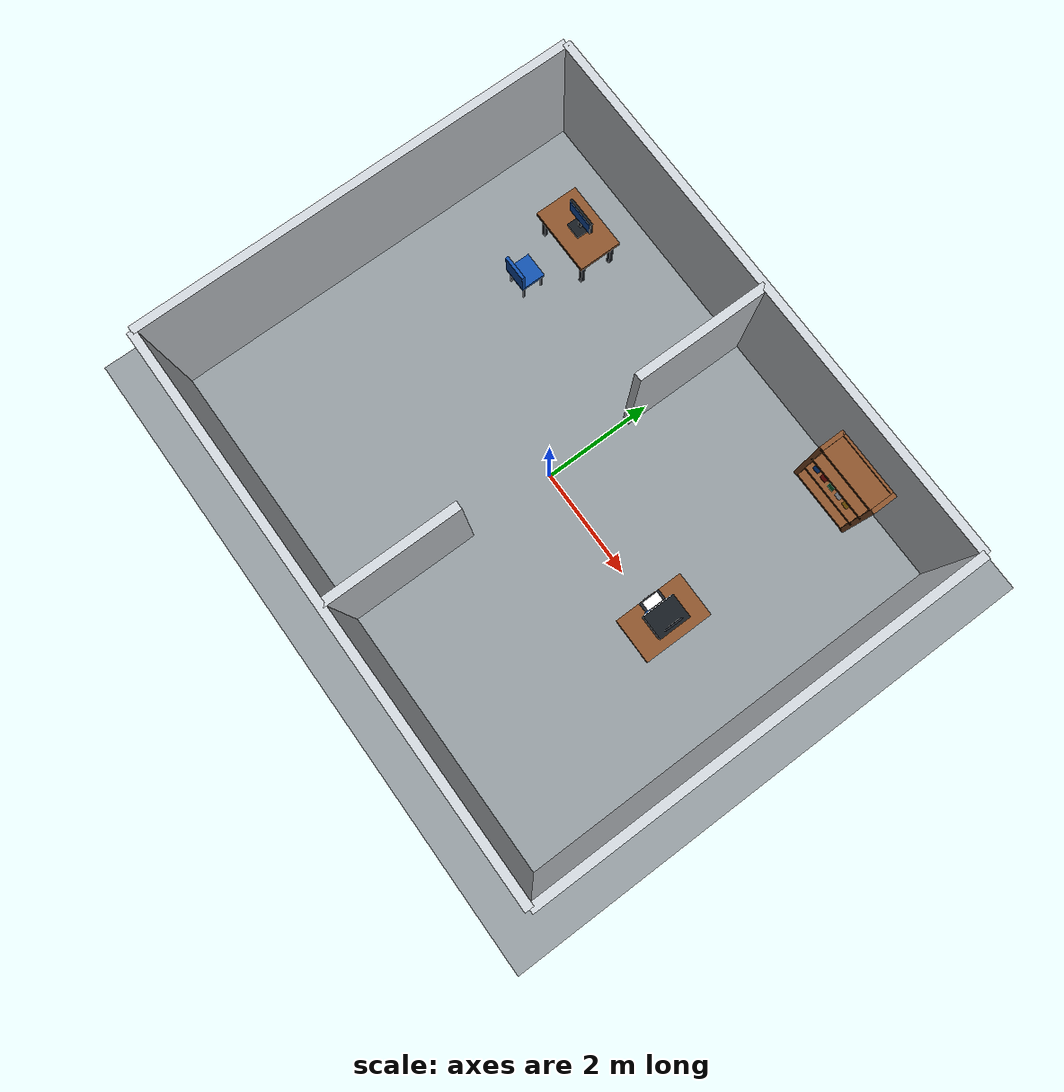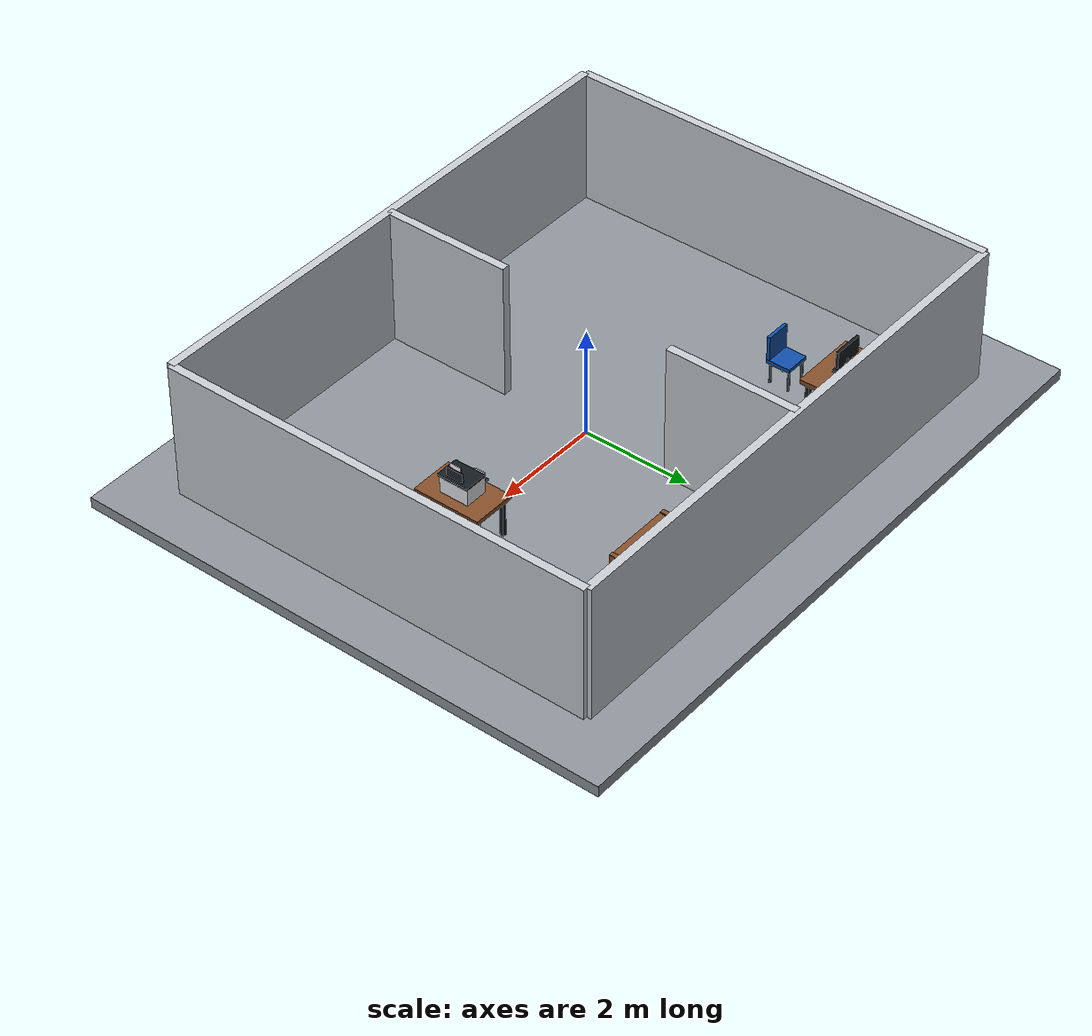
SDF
<?xml version="1.0"?>
<!-- All geometry is bundled and authored for this project; no Fuel downloads. -->
<sdf version="1.9">
  <world name="office">
    <physics name="default" type="ignored"><max_step_size>0.002</max_step_size><real_time_factor>1.0</real_time_factor></physics>
    <gravity>0 0 -9.81</gravity>
    <plugin filename="gz-sim-physics-system" name="gz::sim::systems::Physics"/>
    <plugin filename="gz-sim-user-commands-system" name="gz::sim::systems::UserCommands"/>
    <plugin filename="gz-sim-scene-broadcaster-system" name="gz::sim::systems::SceneBroadcaster"/>
    <plugin filename="gz-sim-sensors-system" name="gz::sim::systems::Sensors"><render_engine>ogre2</render_engine></plugin>
    <scene><ambient>0.65 0.65 0.65 1</ambient><background>0.85 0.9 0.95 1</background><shadows>false</shadows></scene>
    <light name="sun" type="directional"><pose>0 0 6 0 0 0</pose><diffuse>0.85 0.85 0.85 1</diffuse><specular>0.1 0.1 0.1 1</specular><direction>-0.3 -0.4 -1</direction><cast_shadows>false</cast_shadows></light>
    <!-- Observer view for recordings; never used by localization or visual memory. -->
    <model name="demo_camera"><static>true</static><pose>0.6 -4 5 0 0 0</pose><link name="camera">
      <sensor name="overview" type="camera">
        <pose>0 0 0 0 0.8960553846 1.5707963268</pose>
        <topic>/demo/overview</topic><always_on>true</always_on><update_rate>5</update_rate>
        <camera><horizontal_fov>1.25</horizontal_fov>
          <image><width>640</width><height>480</height><format>R8G8B8</format></image>
          <clip><near>0.1</near><far>30</far></clip>
        </camera>
      </sensor>
    </link></model>
    <model name="floor"><static>true</static><pose>0 0 -0.1 0 0 0</pose><link name="body">
      <visual name="floor"><pose>0 0 0 0 0 0</pose><geometry><box><size>12 10 0.2</size></box></geometry><material><ambient>0.55 0.58 0.6 1</ambient><diffuse>0.55 0.58 0.6 1</diffuse></material></visual>
      <collision name="floor"><pose>0 0 0 0 0 0</pose><geometry><box><size>12 10 0.2</size></box></geometry></collision>
    </link></model>
    <model name="walls"><static>true</static><pose>0 0 0 0 0 0</pose><link name="body">
      <visual name="north"><pose>0 4 1.25 0 0 0</pose><geometry><box><size>10 0.15 2.5</size></box></geometry><material><ambient>0.78 0.8 0.82 1</ambient><diffuse>0.78 0.8 0.82 1</diffuse></material></visual>
      <collision name="north"><pose>0 4 1.25 0 0 0</pose><geometry><box><size>10 0.15 2.5</size></box></geometry></collision>
      <visual name="south"><pose>0 -4 1.25 0 0 0</pose><geometry><box><size>10 0.15 2.5</size></box></geometry><material><ambient>0.78 0.8 0.82 1</ambient><diffuse>0.78 0.8 0.82 1</diffuse></material></visual>
      <collision name="south"><pose>0 -4 1.25 0 0 0</pose><geometry><box><size>10 0.15 2.5</size></box></geometry></collision>
      <visual name="east"><pose>5 0 1.25 0 0 0</pose><geometry><box><size>0.15 8 2.5</size></box></geometry><material><ambient>0.78 0.8 0.82 1</ambient><diffuse>0.78 0.8 0.82 1</diffuse></material></visual>
      <collision name="east"><pose>5 0 1.25 0 0 0</pose><geometry><box><size>0.15 8 2.5</size></box></geometry></collision>
      <visual name="west"><pose>-5 0 1.25 0 0 0</pose><geometry><box><size>0.15 8 2.5</size></box></geometry><material><ambient>0.78 0.8 0.82 1</ambient><diffuse>0.78 0.8 0.82 1</diffuse></material></visual>
      <collision name="west"><pose>-5 0 1.25 0 0 0</pose><geometry><box><size>0.15 8 2.5</size></box></geometry></collision>
      <visual name="divider_north"><pose>0 2.8 1.25 0 0 0</pose><geometry><box><size>0.15 2.4 2.5</size></box></geometry><material><ambient>0.78 0.8 0.82 1</ambient><diffuse>0.78 0.8 0.82 1</diffuse></material></visual>
      <collision name="divider_north"><pose>0 2.8 1.25 0 0 0</pose><geometry><box><size>0.15 2.4 2.5</size></box></geometry></collision>
      <visual name="divider_south"><pose>0 -2.8 1.25 0 0 0</pose><geometry><box><size>0.15 2.4 2.5</size></box></geometry><material><ambient>0.78 0.8 0.82 1</ambient><diffuse>0.78 0.8 0.82 1</diffuse></material></visual>
      <collision name="divider_south"><pose>0 -2.8 1.25 0 0 0</pose><geometry><box><size>0.15 2.4 2.5</size></box></geometry></collision>
    </link></model>
    <model name="printer_desk"><static>true</static><pose>3 0 0 0 0 1.5707963268</pose><link name="body">
      <visual name="top"><pose>0 0 0.74 0 0 0</pose><geometry><box><size>1.25 0.8 0.08</size></box></geometry><material><ambient>0.52 0.31 0.16 1</ambient><diffuse>0.52 0.31 0.16 1</diffuse></material></visual>
      <collision name="top"><pose>0 0 0.74 0 0 0</pose><geometry><box><size>1.25 0.8 0.08</size></box></geometry></collision>
      <visual name="leg_-0.53_-0.3"><pose>-0.53 -0.3 0.35 0 0 0</pose><geometry><box><size>0.07 0.07 0.7</size></box></geometry><material><ambient>0.08 0.1 0.12 1</ambient><diffuse>0.08 0.1 0.12 1</diffuse></material></visual>
      <collision name="leg_-0.53_-0.3"><pose>-0.53 -0.3 0.35 0 0 0</pose><geometry><box><size>0.07 0.07 0.7</size></box></geometry></collision>
      <visual name="leg_-0.53_0.3"><pose>-0.53 0.3 0.35 0 0 0</pose><geometry><box><size>0.07 0.07 0.7</size></box></geometry><material><ambient>0.08 0.1 0.12 1</ambient><diffuse>0.08 0.1 0.12 1</diffuse></material></visual>
      <collision name="leg_-0.53_0.3"><pose>-0.53 0.3 0.35 0 0 0</pose><geometry><box><size>0.07 0.07 0.7</size></box></geometry></collision>
      <visual name="leg_0.53_-0.3"><pose>0.53 -0.3 0.35 0 0 0</pose><geometry><box><size>0.07 0.07 0.7</size></box></geometry><material><ambient>0.08 0.1 0.12 1</ambient><diffuse>0.08 0.1 0.12 1</diffuse></material></visual>
      <collision name="leg_0.53_-0.3"><pose>0.53 -0.3 0.35 0 0 0</pose><geometry><box><size>0.07 0.07 0.7</size></box></geometry></collision>
      <visual name="leg_0.53_0.3"><pose>0.53 0.3 0.35 0 0 0</pose><geometry><box><size>0.07 0.07 0.7</size></box></geometry><material><ambient>0.08 0.1 0.12 1</ambient><diffuse>0.08 0.1 0.12 1</diffuse></material></visual>
      <collision name="leg_0.53_0.3"><pose>0.53 0.3 0.35 0 0 0</pose><geometry><box><size>0.07 0.07 0.7</size></box></geometry></collision>
    </link></model>
    <model name="printer"><static>true</static><pose>3 0 0.78 0 0 -1.5707963268</pose><link name="body">
      <visual name="body"><pose>0 0 0.16 0 0 0</pose><geometry><box><size>0.55 0.42 0.32</size></box></geometry><material><ambient>0.9 0.91 0.93 1</ambient><diffuse>0.9 0.91 0.93 1</diffuse></material></visual>
      <collision name="body"><pose>0 0 0.16 0 0 0</pose><geometry><box><size>0.55 0.42 0.32</size></box></geometry></collision>
      <visual name="scanner_lid"><pose>0 0.02 0.34 0 0 0</pose><geometry><box><size>0.58 0.43 0.04</size></box></geometry><material><ambient>0.08 0.1 0.12 1</ambient><diffuse>0.08 0.1 0.12 1</diffuse></material></visual>
      <collision name="scanner_lid"><pose>0 0.02 0.34 0 0 0</pose><geometry><box><size>0.58 0.43 0.04</size></box></geometry></collision>
      <visual name="paper_slot"><pose>0 -0.216 0.16 0 0 0</pose><geometry><box><size>0.38 0.012 0.045</size></box></geometry><material><ambient>0.08 0.1 0.12 1</ambient><diffuse>0.08 0.1 0.12 1</diffuse></material></visual>
      <collision name="paper_slot"><pose>0 -0.216 0.16 0 0 0</pose><geometry><box><size>0.38 0.012 0.045</size></box></geometry></collision>
      <visual name="paper_tray"><pose>0 -0.3 0.08 0 0 0</pose><geometry><box><size>0.38 0.19 0.025</size></box></geometry><material><ambient>0.12 0.14 0.17 1</ambient><diffuse>0.12 0.14 0.17 1</diffuse></material></visual>
      <collision name="paper_tray"><pose>0 -0.3 0.08 0 0 0</pose><geometry><box><size>0.38 0.19 0.025</size></box></geometry></collision>
      <visual name="paper"><pose>0 -0.29 0.098 0 0 0</pose><geometry><box><size>0.29 0.18 0.01</size></box></geometry><material><ambient>1 1 1 1</ambient><diffuse>1 1 1 1</diffuse></material></visual>
      <collision name="paper"><pose>0 -0.29 0.098 0 0 0</pose><geometry><box><size>0.29 0.18 0.01</size></box></geometry></collision>
      <visual name="display"><pose>0.18 -0.22 0.255 0 0 0</pose><geometry><box><size>0.1 0.015 0.05</size></box></geometry><material><ambient>0.06 0.3 0.65 1</ambient><diffuse>0.06 0.3 0.65 1</diffuse></material></visual>
      <collision name="display"><pose>0.18 -0.22 0.255 0 0 0</pose><geometry><box><size>0.1 0.015 0.05</size></box></geometry></collision>
      <visual name="input_support"><pose>0 0.17 0.43 0 0 0</pose><geometry><box><size>0.32 0.025 0.22</size></box></geometry><material><ambient>0.12 0.14 0.17 1</ambient><diffuse>0.12 0.14 0.17 1</diffuse></material></visual>
      <collision name="input_support"><pose>0 0.17 0.43 0 0 0</pose><geometry><box><size>0.32 0.025 0.22</size></box></geometry></collision>
      <visual name="input_paper"><pose>0 0.15 0.48 0 0 0</pose><geometry><box><size>0.21 0.006 0.29</size></box></geometry><material><ambient>1 1 1 1</ambient><diffuse>1 1 1 1</diffuse></material></visual>
      <collision name="input_paper"><pose>0 0.15 0.48 0 0 0</pose><geometry><box><size>0.21 0.006 0.29</size></box></geometry></collision>
      <visual name="output_page"><pose>0 -0.402 0.09 0 0 0</pose><geometry><box><size>0.21 0.008 0.15</size></box></geometry><material><ambient>1 1 1 1</ambient><diffuse>1 1 1 1</diffuse></material></visual>
      <collision name="output_page"><pose>0 -0.402 0.09 0 0 0</pose><geometry><box><size>0.21 0.008 0.15</size></box></geometry></collision>
      <visual name="page_line_one"><pose>0 -0.408 0.125 0 0 0</pose><geometry><box><size>0.14 0.002 0.006</size></box></geometry><material><ambient>0.2 0.2 0.2 1</ambient><diffuse>0.2 0.2 0.2 1</diffuse></material></visual>
      <visual name="page_line_two"><pose>-0.015 -0.408 0.10 0 0 0</pose><geometry><box><size>0.11 0.002 0.006</size></box></geometry><material><ambient>0.2 0.2 0.2 1</ambient><diffuse>0.2 0.2 0.2 1</diffuse></material></visual>
    </link></model>
    <model name="work_desk"><static>true</static><pose>-3 2.8 0 0 0 0</pose><link name="body">
      <visual name="top"><pose>0 0 0.74 0 0 0</pose><geometry><box><size>1.25 0.8 0.08</size></box></geometry><material><ambient>0.52 0.31 0.16 1</ambient><diffuse>0.52 0.31 0.16 1</diffuse></material></visual>
      <collision name="top"><pose>0 0 0.74 0 0 0</pose><geometry><box><size>1.25 0.8 0.08</size></box></geometry></collision>
      <visual name="leg_-0.53_-0.3"><pose>-0.53 -0.3 0.35 0 0 0</pose><geometry><box><size>0.07 0.07 0.7</size></box></geometry><material><ambient>0.08 0.1 0.12 1</ambient><diffuse>0.08 0.1 0.12 1</diffuse></material></visual>
      <collision name="leg_-0.53_-0.3"><pose>-0.53 -0.3 0.35 0 0 0</pose><geometry><box><size>0.07 0.07 0.7</size></box></geometry></collision>
      <visual name="leg_-0.53_0.3"><pose>-0.53 0.3 0.35 0 0 0</pose><geometry><box><size>0.07 0.07 0.7</size></box></geometry><material><ambient>0.08 0.1 0.12 1</ambient><diffuse>0.08 0.1 0.12 1</diffuse></material></visual>
      <collision name="leg_-0.53_0.3"><pose>-0.53 0.3 0.35 0 0 0</pose><geometry><box><size>0.07 0.07 0.7</size></box></geometry></collision>
      <visual name="leg_0.53_-0.3"><pose>0.53 -0.3 0.35 0 0 0</pose><geometry><box><size>0.07 0.07 0.7</size></box></geometry><material><ambient>0.08 0.1 0.12 1</ambient><diffuse>0.08 0.1 0.12 1</diffuse></material></visual>
      <collision name="leg_0.53_-0.3"><pose>0.53 -0.3 0.35 0 0 0</pose><geometry><box><size>0.07 0.07 0.7</size></box></geometry></collision>
      <visual name="leg_0.53_0.3"><pose>0.53 0.3 0.35 0 0 0</pose><geometry><box><size>0.07 0.07 0.7</size></box></geometry><material><ambient>0.08 0.1 0.12 1</ambient><diffuse>0.08 0.1 0.12 1</diffuse></material></visual>
      <collision name="leg_0.53_0.3"><pose>0.53 0.3 0.35 0 0 0</pose><geometry><box><size>0.07 0.07 0.7</size></box></geometry></collision>
    </link></model>
    <model name="monitor"><static>true</static><pose>-3 2.8 0.78 0 0 0</pose><link name="body">
      <visual name="foot"><pose>0 0 0.015 0 0 0</pose><geometry><box><size>0.3 0.24 0.03</size></box></geometry><material><ambient>0.08 0.1 0.12 1</ambient><diffuse>0.08 0.1 0.12 1</diffuse></material></visual>
      <collision name="foot"><pose>0 0 0.015 0 0 0</pose><geometry><box><size>0.3 0.24 0.03</size></box></geometry></collision>
      <visual name="stand"><pose>0 0.05 0.15 0 0 0</pose><geometry><box><size>0.06 0.05 0.27</size></box></geometry><material><ambient>0.08 0.1 0.12 1</ambient><diffuse>0.08 0.1 0.12 1</diffuse></material></visual>
      <collision name="stand"><pose>0 0.05 0.15 0 0 0</pose><geometry><box><size>0.06 0.05 0.27</size></box></geometry></collision>
      <visual name="screen"><pose>0 0.05 0.38 0 0 0</pose><geometry><box><size>0.56 0.05 0.32</size></box></geometry><material><ambient>0.08 0.1 0.12 1</ambient><diffuse>0.08 0.1 0.12 1</diffuse></material></visual>
      <collision name="screen"><pose>0 0.05 0.38 0 0 0</pose><geometry><box><size>0.56 0.05 0.32</size></box></geometry></collision>
      <visual name="display"><pose>0 0.018 0.38 0 0 0</pose><geometry><box><size>0.52 0.012 0.28</size></box></geometry><material><ambient>0.06 0.3 0.65 1</ambient><diffuse>0.06 0.3 0.65 1</diffuse></material></visual>
      <collision name="display"><pose>0 0.018 0.38 0 0 0</pose><geometry><box><size>0.52 0.012 0.28</size></box></geometry></collision>
    </link></model>
    <model name="chair"><static>true</static><pose>-3 1.7 0 0 0 3.1415926536</pose><link name="body">
      <visual name="seat"><pose>0 0 0.44 0 0 0</pose><geometry><box><size>0.46 0.45 0.07</size></box></geometry><material><ambient>0.06 0.3 0.65 1</ambient><diffuse>0.06 0.3 0.65 1</diffuse></material></visual>
      <collision name="seat"><pose>0 0 0.44 0 0 0</pose><geometry><box><size>0.46 0.45 0.07</size></box></geometry></collision>
      <visual name="back"><pose>0 0.2 0.69 0 0 0</pose><geometry><box><size>0.46 0.06 0.48</size></box></geometry><material><ambient>0.06 0.3 0.65 1</ambient><diffuse>0.06 0.3 0.65 1</diffuse></material></visual>
      <collision name="back"><pose>0 0.2 0.69 0 0 0</pose><geometry><box><size>0.46 0.06 0.48</size></box></geometry></collision>
      <visual name="leg_-0.18_-0.18"><pose>-0.18 -0.18 0.2 0 0 0</pose><geometry><box><size>0.035 0.035 0.4</size></box></geometry><material><ambient>0.08 0.1 0.12 1</ambient><diffuse>0.08 0.1 0.12 1</diffuse></material></visual>
      <collision name="leg_-0.18_-0.18"><pose>-0.18 -0.18 0.2 0 0 0</pose><geometry><box><size>0.035 0.035 0.4</size></box></geometry></collision>
      <visual name="leg_-0.18_0.18"><pose>-0.18 0.18 0.2 0 0 0</pose><geometry><box><size>0.035 0.035 0.4</size></box></geometry><material><ambient>0.08 0.1 0.12 1</ambient><diffuse>0.08 0.1 0.12 1</diffuse></material></visual>
      <collision name="leg_-0.18_0.18"><pose>-0.18 0.18 0.2 0 0 0</pose><geometry><box><size>0.035 0.035 0.4</size></box></geometry></collision>
      <visual name="leg_0.18_-0.18"><pose>0.18 -0.18 0.2 0 0 0</pose><geometry><box><size>0.035 0.035 0.4</size></box></geometry><material><ambient>0.08 0.1 0.12 1</ambient><diffuse>0.08 0.1 0.12 1</diffuse></material></visual>
      <collision name="leg_0.18_-0.18"><pose>0.18 -0.18 0.2 0 0 0</pose><geometry><box><size>0.035 0.035 0.4</size></box></geometry></collision>
      <visual name="leg_0.18_0.18"><pose>0.18 0.18 0.2 0 0 0</pose><geometry><box><size>0.035 0.035 0.4</size></box></geometry><material><ambient>0.08 0.1 0.12 1</ambient><diffuse>0.08 0.1 0.12 1</diffuse></material></visual>
      <collision name="leg_0.18_0.18"><pose>0.18 0.18 0.2 0 0 0</pose><geometry><box><size>0.035 0.035 0.4</size></box></geometry></collision>
    </link></model>
    <model name="bookshelf"><static>true</static><pose>3 3.55 0 0 0 0</pose><link name="body">
      <visual name="left"><pose>-0.6 0 0.9 0 0 0</pose><geometry><box><size>0.08 0.45 1.8</size></box></geometry><material><ambient>0.52 0.31 0.16 1</ambient><diffuse>0.52 0.31 0.16 1</diffuse></material></visual>
      <collision name="left"><pose>-0.6 0 0.9 0 0 0</pose><geometry><box><size>0.08 0.45 1.8</size></box></geometry></collision>
      <visual name="right"><pose>0.6 0 0.9 0 0 0</pose><geometry><box><size>0.08 0.45 1.8</size></box></geometry><material><ambient>0.52 0.31 0.16 1</ambient><diffuse>0.52 0.31 0.16 1</diffuse></material></visual>
      <collision name="right"><pose>0.6 0 0.9 0 0 0</pose><geometry><box><size>0.08 0.45 1.8</size></box></geometry></collision>
      <visual name="back"><pose>0 0.2 0.9 0 0 0</pose><geometry><box><size>1.2 0.05 1.8</size></box></geometry><material><ambient>0.52 0.31 0.16 1</ambient><diffuse>0.52 0.31 0.16 1</diffuse></material></visual>
      <collision name="back"><pose>0 0.2 0.9 0 0 0</pose><geometry><box><size>1.2 0.05 1.8</size></box></geometry></collision>
      <visual name="shelf_0"><pose>0 0 0.05 0 0 0</pose><geometry><box><size>1.2 0.45 0.06</size></box></geometry><material><ambient>0.52 0.31 0.16 1</ambient><diffuse>0.52 0.31 0.16 1</diffuse></material></visual>
      <collision name="shelf_0"><pose>0 0 0.05 0 0 0</pose><geometry><box><size>1.2 0.45 0.06</size></box></geometry></collision>
      <visual name="shelf_1"><pose>0 0 0.6 0 0 0</pose><geometry><box><size>1.2 0.45 0.06</size></box></geometry><material><ambient>0.52 0.31 0.16 1</ambient><diffuse>0.52 0.31 0.16 1</diffuse></material></visual>
      <collision name="shelf_1"><pose>0 0 0.6 0 0 0</pose><geometry><box><size>1.2 0.45 0.06</size></box></geometry></collision>
      <visual name="shelf_2"><pose>0 0 1.15 0 0 0</pose><geometry><box><size>1.2 0.45 0.06</size></box></geometry><material><ambient>0.52 0.31 0.16 1</ambient><diffuse>0.52 0.31 0.16 1</diffuse></material></visual>
      <collision name="shelf_2"><pose>0 0 1.15 0 0 0</pose><geometry><box><size>1.2 0.45 0.06</size></box></geometry></collision>
      <visual name="shelf_3"><pose>0 0 1.75 0 0 0</pose><geometry><box><size>1.2 0.45 0.06</size></box></geometry><material><ambient>0.52 0.31 0.16 1</ambient><diffuse>0.52 0.31 0.16 1</diffuse></material></visual>
      <collision name="shelf_3"><pose>0 0 1.75 0 0 0</pose><geometry><box><size>1.2 0.45 0.06</size></box></geometry></collision>
      <visual name="book_0"><pose>-0.42 0 0.81 0 0 0</pose><geometry><box><size>0.12 0.27 0.36</size></box></geometry><material><ambient>0.06 0.3 0.65 1</ambient><diffuse>0.06 0.3 0.65 1</diffuse></material></visual>
      <collision name="book_0"><pose>-0.42 0 0.81 0 0 0</pose><geometry><box><size>0.12 0.27 0.36</size></box></geometry></collision>
      <visual name="book_1"><pose>-0.24 0 0.81 0 0 0</pose><geometry><box><size>0.12 0.27 0.36</size></box></geometry><material><ambient>0.65 0.08 0.06 1</ambient><diffuse>0.65 0.08 0.06 1</diffuse></material></visual>
      <collision name="book_1"><pose>-0.24 0 0.81 0 0 0</pose><geometry><box><size>0.12 0.27 0.36</size></box></geometry></collision>
      <visual name="book_2"><pose>-0.06 0 0.81 0 0 0</pose><geometry><box><size>0.12 0.27 0.36</size></box></geometry><material><ambient>0.08 0.4 0.2 1</ambient><diffuse>0.08 0.4 0.2 1</diffuse></material></visual>
      <collision name="book_2"><pose>-0.06 0 0.81 0 0 0</pose><geometry><box><size>0.12 0.27 0.36</size></box></geometry></collision>
      <visual name="book_3"><pose>0.12 0 0.81 0 0 0</pose><geometry><box><size>0.12 0.27 0.36</size></box></geometry><material><ambient>0.9 0.91 0.93 1</ambient><diffuse>0.9 0.91 0.93 1</diffuse></material></visual>
      <collision name="book_3"><pose>0.12 0 0.81 0 0 0</pose><geometry><box><size>0.12 0.27 0.36</size></box></geometry></collision>
      <visual name="book_4"><pose>0.3 0 0.81 0 0 0</pose><geometry><box><size>0.12 0.27 0.36</size></box></geometry><material><ambient>0.85 0.6 0.1 1</ambient><diffuse>0.85 0.6 0.1 1</diffuse></material></visual>
      <collision name="book_4"><pose>0.3 0 0.81 0 0 0</pose><geometry><box><size>0.12 0.27 0.36</size></box></geometry></collision>
    </link></model>
  </world>
</sdf>
